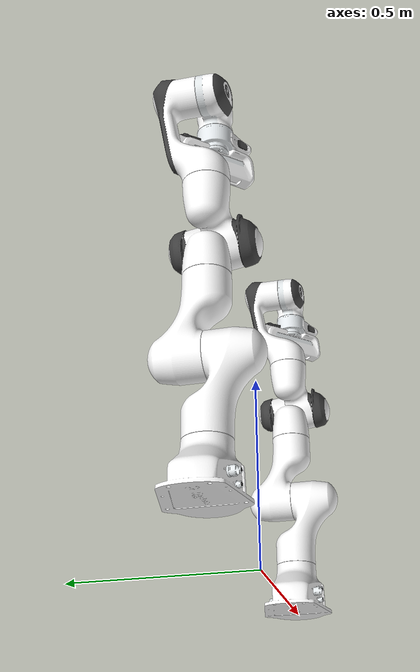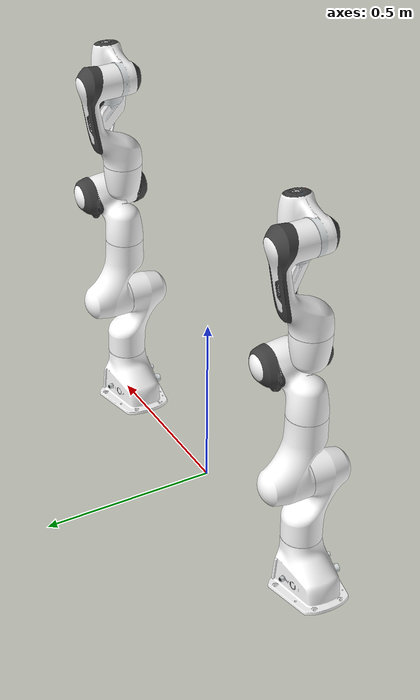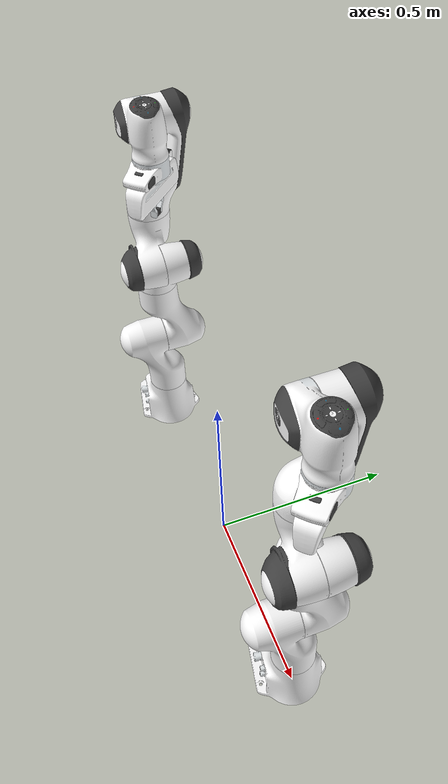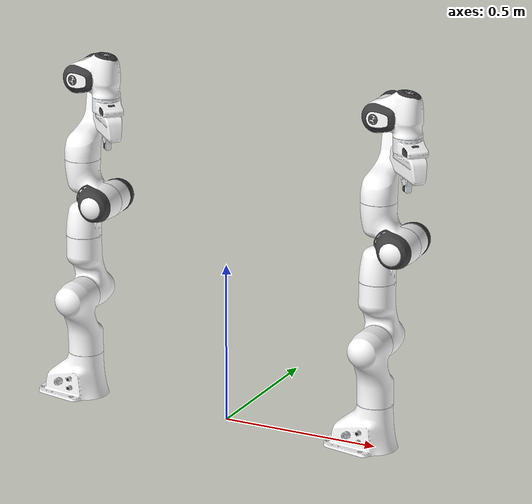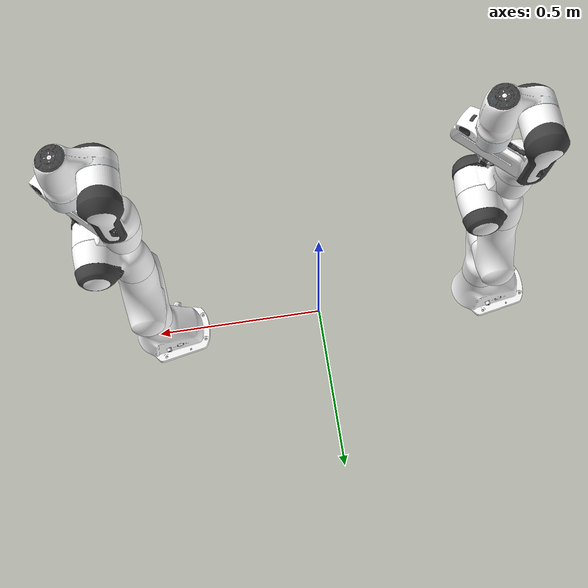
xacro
<?xml version="1.0"?>
<robot xmlns:xacro="http://www.ros.org/wiki/xacro" name="bimanual_panda">
    <xacro:arg name="initial_positions_file" default="initial_positions.yaml" />

    <!-- Import bimanual_panda urdf file -->
    <xacro:include filename="$(find moveit_resources_panda_description)/urdf/dual_panda.urdf" />

    <!-- Import control_xacro -->
    <xacro:include filename="bimanual_panda.ros2_control.xacro" />

    <xacro:bimanual_panda_ros2_control name="FakeSystem" initial_positions_file="$(arg initial_positions_file)"/>

</robot>

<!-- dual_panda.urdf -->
<robot name="bimanual_panda" xmlns:xacro="http://www.ros.org/wiki/xacro">

  <link name="panda_base"/>

  <joint name="left_panda_base_joint" type="fixed">
    <origin xyz="-0.5 0 0" rpy="0 0 0"/>
    <parent link="panda_base"/>
    <child link="left_panda_link0"/>
  </joint>

  <link name="left_panda_link0">
    <visual>
      <geometry>
        <mesh filename="package://moveit_resources_panda_description/meshes/visual/link0.dae"/>
      </geometry>
    </visual>
    <collision>
      <geometry>
        <mesh filename="package://moveit_resources_panda_description/meshes/collision/link0.stl"/>
      </geometry>
    </collision>
  </link>

  <link name="left_panda_link1">
    <visual>
      <geometry>
        <mesh filename="package://moveit_resources_panda_description/meshes/visual/link1.dae"/>
      </geometry>
    </visual>
    <collision>
      <geometry>
        <mesh filename="package://moveit_resources_panda_description/meshes/collision/link1.stl"/>
      </geometry>
    </collision>
  </link>

  <joint name="left_panda_joint1" type="revolute">
    <safety_controller k_position="100.0" k_velocity="40.0" soft_lower_limit="-2.8973" soft_upper_limit="2.8973"/>
    <origin xyz="0 0 0.333" rpy="0 0 0"/>
    <parent link="left_panda_link0"/>
    <child link="left_panda_link1"/>
    <axis xyz="0 0 1"/>
    <limit effort="87" lower="-2.9671" upper="2.9671" velocity="2.3925"/>
  </joint>

  <link name="left_panda_link2">
    <visual>
      <geometry>
        <mesh filename="package://moveit_resources_panda_description/meshes/visual/link2.dae"/>
      </geometry>
    </visual>
    <collision>
      <geometry>
        <mesh filename="package://moveit_resources_panda_description/meshes/collision/link2.stl"/>
      </geometry>
    </collision>
  </link>

  <joint name="left_panda_joint2" type="revolute">
    <safety_controller k_position="100.0" k_velocity="40.0" soft_lower_limit="-1.7628" soft_upper_limit="1.7628"/>
    <origin xyz="0 0 0" rpy="-1.57079632679 0 0"/>
    <parent link="left_panda_link1"/>
    <child link="left_panda_link2"/>
    <axis xyz="0 0 1"/>
    <limit effort="87" lower="-1.8326" upper="1.8326" velocity="2.3925"/>
  </joint>

  <link name="left_panda_link3">
    <visual>
      <geometry>
        <mesh filename="package://moveit_resources_panda_description/meshes/visual/link3.dae"/>
      </geometry>
    </visual>
    <collision>
      <geometry>
        <mesh filename="package://moveit_resources_panda_description/meshes/collision/link3.stl"/>
      </geometry>
    </collision>
  </link>

  <joint name="left_panda_joint3" type="revolute">
    <safety_controller k_position="100.0" k_velocity="40.0" soft_lower_limit="-2.8973" soft_upper_limit="2.8973"/>
    <origin xyz="0 -0.316 0" rpy="1.57079632679 0 0"/>
    <parent link="left_panda_link2"/>
    <child link="left_panda_link3"/>
    <axis xyz="0 0 1"/>
    <limit effort="87" lower="-2.9671" upper="2.9671" velocity="2.3925"/>
  </joint>

  <link name="left_panda_link4">
    <visual>
      <geometry>
        <mesh filename="package://moveit_resources_panda_description/meshes/visual/link4.dae"/>
      </geometry>
    </visual>
    <collision>
      <geometry>
        <mesh filename="package://moveit_resources_panda_description/meshes/collision/link4.stl"/>
      </geometry>
    </collision>
  </link>

  <joint name="left_panda_joint4" type="revolute">
    <safety_controller k_position="100.0" k_velocity="40.0" soft_lower_limit="-3.0718" soft_upper_limit="0.0175"/>
    <origin xyz="0.0825 0 0" rpy="1.57079632679 0 0"/>
    <parent link="left_panda_link3"/>
    <child link="left_panda_link4"/>
    <axis xyz="0 0 1"/>
    <limit effort="87" lower="-3.1416" upper="0.0873" velocity="2.3925"/>
  </joint>

  <link name="left_panda_link5">
    <visual>
      <geometry>
        <mesh filename="package://moveit_resources_panda_description/meshes/visual/link5.dae"/>
      </geometry>
    </visual>
    <collision>
      <geometry>
        <mesh filename="package://moveit_resources_panda_description/meshes/collision/link5.stl"/>
      </geometry>
    </collision>
  </link>

  <joint name="left_panda_joint5" type="revolute">
    <safety_controller k_position="100.0" k_velocity="40.0" soft_lower_limit="-2.8973" soft_upper_limit="2.8973"/>
    <origin xyz="-0.0825 0.384 0" rpy="-1.57079632679 0 0"/>
    <parent link="left_panda_link4"/>
    <child link="left_panda_link5"/>
    <axis xyz="0 0 1"/>
    <limit effort="12" lower="-2.9671" upper="2.9671" velocity="2.8710"/>
  </joint>

  <link name="left_panda_link6">
    <visual>
      <geometry>
        <mesh filename="package://moveit_resources_panda_description/meshes/visual/link6.dae"/>
      </geometry>
    </visual>
    <collision>
      <geometry>
        <mesh filename="package://moveit_resources_panda_description/meshes/collision/link6.stl"/>
      </geometry>
    </collision>
  </link>

  <joint name="left_panda_joint6" type="revolute">
    <safety_controller k_position="100.0" k_velocity="40.0" soft_lower_limit="-0.0175" soft_upper_limit="3.7525"/>
    <origin xyz="0 0 0" rpy="1.57079632679 0 0"/>
    <parent link="left_panda_link5"/>
    <child link="left_panda_link6"/>
    <axis xyz="0 0 1"/>
    <limit effort="12" lower="-0.0873" upper="3.8223" velocity="2.8710"/>
  </joint>

  <link name="left_panda_link7">
    <visual>
      <geometry>
        <mesh filename="package://moveit_resources_panda_description/meshes/visual/link7.dae"/>
      </geometry>
    </visual>
    <collision>
      <geometry>
        <mesh filename="package://moveit_resources_panda_description/meshes/collision/link7.stl"/>
      </geometry>
    </collision>
  </link>

  <joint name="left_panda_joint7" type="revolute">
    <safety_controller k_position="100.0" k_velocity="40.0" soft_lower_limit="-2.8973" soft_upper_limit="2.8973"/>
    <origin xyz="0.088 0 0" rpy="1.57079632679 0 0"/>
    <parent link="left_panda_link6"/>
    <child link="left_panda_link7"/>
    <axis xyz="0 0 1"/>
    <limit effort="12" lower="-2.9671" upper="2.9671" velocity="2.8710"/>
  </joint>

  <link name="left_panda_link8"/>

  <joint name="left_panda_joint8" type="fixed">
    <origin xyz="0 0 0.107" rpy="0 0 0"/>
    <parent link="left_panda_link7"/>
    <child link="left_panda_link8"/>
    <axis xyz="0 0 0"/>
  </joint>

  <joint name="left_panda_hand_joint" type="fixed">
    <origin xyz="0 0 0" rpy="0 0 -0.785398163397"/>
    <parent link="left_panda_link8"/>
    <child link="left_panda_hand"/>
  </joint>

  <link name="left_panda_hand">
    <visual>
      <geometry>
        <mesh filename="package://moveit_resources_panda_description/meshes/visual/hand.dae"/>
      </geometry>
    </visual>
    <collision>
      <geometry>
        <mesh filename="package://moveit_resources_panda_description/meshes/collision/hand.stl"/>
      </geometry>
    </collision>
  </link>

  <link name="left_panda_leftfinger">
    <visual>
      <geometry>
        <mesh filename="package://moveit_resources_panda_description/meshes/visual/finger.dae"/>
      </geometry>
    </visual>
    <collision>
      <geometry>
        <mesh filename="package://moveit_resources_panda_description/meshes/collision/finger.stl"/>
      </geometry>
    </collision>
  </link>

  <link name="left_panda_rightfinger">
    <visual>
      <origin xyz="0 0 0" rpy="0 0 3.14159265359"/>
      <geometry>
        <mesh filename="package://moveit_resources_panda_description/meshes/visual/finger.dae"/>
      </geometry>
    </visual>
    <collision>
      <origin xyz="0 0 0" rpy="0 0 3.14159265359"/>
      <geometry>
        <mesh filename="package://moveit_resources_panda_description/meshes/collision/finger.stl"/>
      </geometry>
    </collision>
  </link>

  <joint name="left_panda_finger_joint1" type="prismatic">
    <origin xyz="0 0 0.0584" rpy="0 0 0"/>
    <parent link="left_panda_hand"/>
    <child link="left_panda_leftfinger"/>
    <axis xyz="0 1 0"/>
    <limit effort="20" lower="0.0" upper="0.04" velocity="0.2"/>
  </joint>

  <joint name="left_panda_finger_joint2" type="prismatic">
    <origin xyz="0 0 0.0584" rpy="0 0 0"/>
    <parent link="left_panda_hand"/>
    <child link="left_panda_rightfinger"/>
    <axis xyz="0 -1 0"/>
    <limit effort="20" lower="0.0" upper="0.04" velocity="0.2"/>
    <mimic joint="left_panda_finger_joint1"/>
  </joint>

  <joint name="right_panda_base_joint" type="fixed">
    <origin xyz="0.5 0 0" rpy="0 0 0"/>
    <parent link="panda_base"/>
    <child link="right_panda_link0"/>
  </joint>

  <link name="right_panda_link0">
    <visual>
      <geometry>
        <mesh filename="package://moveit_resources_panda_description/meshes/visual/link0.dae"/>
      </geometry>
    </visual>
    <collision>
      <geometry>
        <mesh filename="package://moveit_resources_panda_description/meshes/collision/link0.stl"/>
      </geometry>
    </collision>
  </link>

  <link name="right_panda_link1">
    <visual>
      <geometry>
        <mesh filename="package://moveit_resources_panda_description/meshes/visual/link1.dae"/>
      </geometry>
    </visual>
    <collision>
      <geometry>
        <mesh filename="package://moveit_resources_panda_description/meshes/collision/link1.stl"/>
      </geometry>
    </collision>
  </link>

  <joint name="right_panda_joint1" type="revolute">
    <safety_controller k_position="100.0" k_velocity="40.0" soft_lower_limit="-2.8973" soft_upper_limit="2.8973"/>
    <origin xyz="0 0 0.333" rpy="0 0 0"/>
    <parent link="right_panda_link0"/>
    <child link="right_panda_link1"/>
    <axis xyz="0 0 1"/>
    <limit effort="87" lower="-2.9671" upper="2.9671" velocity="2.3925"/>
  </joint>

  <link name="right_panda_link2">
    <visual>
      <geometry>
        <mesh filename="package://moveit_resources_panda_description/meshes/visual/link2.dae"/>
      </geometry>
    </visual>
    <collision>
      <geometry>
        <mesh filename="package://moveit_resources_panda_description/meshes/collision/link2.stl"/>
      </geometry>
    </collision>
  </link>

  <joint name="right_panda_joint2" type="revolute">
    <safety_controller k_position="100.0" k_velocity="40.0" soft_lower_limit="-1.7628" soft_upper_limit="1.7628"/>
    <origin xyz="0 0 0" rpy="-1.57079632679 0 0"/>
    <parent link="right_panda_link1"/>
    <child link="right_panda_link2"/>
    <axis xyz="0 0 1"/>
    <limit effort="87" lower="-1.8326" upper="1.8326" velocity="2.3925"/>
  </joint>

  <link name="right_panda_link3">
    <visual>
      <geometry>
        <mesh filename="package://moveit_resources_panda_description/meshes/visual/link3.dae"/>
      </geometry>
    </visual>
    <collision>
      <geometry>
        <mesh filename="package://moveit_resources_panda_description/meshes/collision/link3.stl"/>
      </geometry>
    </collision>
  </link>

  <joint name="right_panda_joint3" type="revolute">
    <safety_controller k_position="100.0" k_velocity="40.0" soft_lower_limit="-2.8973" soft_upper_limit="2.8973"/>
    <origin xyz="0 -0.316 0" rpy="1.57079632679 0 0"/>
    <parent link="right_panda_link2"/>
    <child link="right_panda_link3"/>
    <axis xyz="0 0 1"/>
    <limit effort="87" lower="-2.9671" upper="2.9671" velocity="2.3925"/>
  </joint>

  <link name="right_panda_link4">
    <visual>
      <geometry>
        <mesh filename="package://moveit_resources_panda_description/meshes/visual/link4.dae"/>
      </geometry>
    </visual>
    <collision>
      <geometry>
        <mesh filename="package://moveit_resources_panda_description/meshes/collision/link4.stl"/>
      </geometry>
    </collision>
  </link>

  <joint name="right_panda_joint4" type="revolute">
    <safety_controller k_position="100.0" k_velocity="40.0" soft_lower_limit="-3.0718" soft_upper_limit="0.0175"/>
    <origin xyz="0.0825 0 0" rpy="1.57079632679 0 0"/>
    <parent link="right_panda_link3"/>
    <child link="right_panda_link4"/>
    <axis xyz="0 0 1"/>
    <limit effort="87" lower="-3.1416" upper="0.0873" velocity="2.3925"/>
  </joint>

  <link name="right_panda_link5">
    <visual>
      <geometry>
        <mesh filename="package://moveit_resources_panda_description/meshes/visual/link5.dae"/>
      </geometry>
    </visual>
    <collision>
      <geometry>
        <mesh filename="package://moveit_resources_panda_description/meshes/collision/link5.stl"/>
      </geometry>
    </collision>
  </link>

  <joint name="right_panda_joint5" type="revolute">
    <safety_controller k_position="100.0" k_velocity="40.0" soft_lower_limit="-2.8973" soft_upper_limit="2.8973"/>
    <origin xyz="-0.0825 0.384 0" rpy="-1.57079632679 0 0"/>
    <parent link="right_panda_link4"/>
    <child link="right_panda_link5"/>
    <axis xyz="0 0 1"/>
    <limit effort="12" lower="-2.9671" upper="2.9671" velocity="2.8710"/>
  </joint>

  <link name="right_panda_link6">
    <visual>
      <geometry>
        <mesh filename="package://moveit_resources_panda_description/meshes/visual/link6.dae"/>
      </geometry>
    </visual>
    <collision>
      <geometry>
        <mesh filename="package://moveit_resources_panda_description/meshes/collision/link6.stl"/>
      </geometry>
    </collision>
  </link>

  <joint name="right_panda_joint6" type="revolute">
    <safety_controller k_position="100.0" k_velocity="40.0" soft_lower_limit="-0.0175" soft_upper_limit="3.7525"/>
    <origin xyz="0 0 0" rpy="1.57079632679 0 0"/>
    <parent link="right_panda_link5"/>
    <child link="right_panda_link6"/>
    <axis xyz="0 0 1"/>
    <limit effort="12" lower="-0.0873" upper="3.8223" velocity="2.8710"/>
  </joint>

  <link name="right_panda_link7">
    <visual>
      <geometry>
        <mesh filename="package://moveit_resources_panda_description/meshes/visual/link7.dae"/>
      </geometry>
    </visual>
    <collision>
      <geometry>
        <mesh filename="package://moveit_resources_panda_description/meshes/collision/link7.stl"/>
      </geometry>
    </collision>
  </link>

  <joint name="right_panda_joint7" type="revolute">
    <safety_controller k_position="100.0" k_velocity="40.0" soft_lower_limit="-2.8973" soft_upper_limit="2.8973"/>
    <origin xyz="0.088 0 0" rpy="1.57079632679 0 0"/>
    <parent link="right_panda_link6"/>
    <child link="right_panda_link7"/>
    <axis xyz="0 0 1"/>
    <limit effort="12" lower="-2.9671" upper="2.9671" velocity="2.8710"/>
  </joint>

  <link name="right_panda_link8"/>

  <joint name="right_panda_joint8" type="fixed">
    <origin xyz="0 0 0.107" rpy="0 0 0"/>
    <parent link="right_panda_link7"/>
    <child link="right_panda_link8"/>
    <axis xyz="0 0 0"/>
  </joint>

  <joint name="right_panda_hand_joint" type="fixed">
    <origin xyz="0 0 0" rpy="0 0 -0.785398163397"/>
    <parent link="right_panda_link8"/>
    <child link="right_panda_hand"/>
  </joint>

  <link name="right_panda_hand">
    <visual>
      <geometry>
        <mesh filename="package://moveit_resources_panda_description/meshes/visual/hand.dae"/>
      </geometry>
    </visual>
    <collision>
      <geometry>
        <mesh filename="package://moveit_resources_panda_description/meshes/collision/hand.stl"/>
      </geometry>
    </collision>
  </link>

  <link name="right_panda_leftfinger">
    <visual>
      <geometry>
        <mesh filename="package://moveit_resources_panda_description/meshes/visual/finger.dae"/>
      </geometry>
    </visual>
    <collision>
      <geometry>
        <mesh filename="package://moveit_resources_panda_description/meshes/collision/finger.stl"/>
      </geometry>
    </collision>
  </link>

  <link name="right_panda_rightfinger">
    <visual>
      <origin xyz="0 0 0" rpy="0 0 3.14159265359"/>
      <geometry>
        <mesh filename="package://moveit_resources_panda_description/meshes/visual/finger.dae"/>
      </geometry>
    </visual>
    <collision>
      <origin xyz="0 0 0" rpy="0 0 3.14159265359"/>
      <geometry>
        <mesh filename="package://moveit_resources_panda_description/meshes/collision/finger.stl"/>
      </geometry>
    </collision>
  </link>

  <joint name="right_panda_finger_joint1" type="prismatic">
    <origin xyz="0 0 0.0584" rpy="0 0 0"/>
    <parent link="right_panda_hand"/>
    <child link="right_panda_leftfinger"/>
    <axis xyz="0 1 0"/>
    <limit effort="20" lower="0.0" upper="0.04" velocity="0.2"/>
  </joint>

  <joint name="right_panda_finger_joint2" type="prismatic">
    <origin xyz="0 0 0.0584" rpy="0 0 0"/>
    <parent link="right_panda_hand"/>
    <child link="right_panda_rightfinger"/>
    <axis xyz="0 -1 0"/>
    <limit effort="20" lower="0.0" upper="0.04" velocity="0.2"/>
    <mimic joint="right_panda_finger_joint1"/>
  </joint>

</robot>
